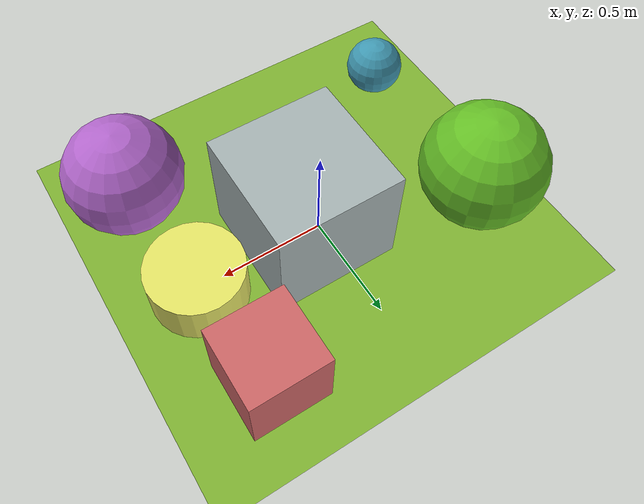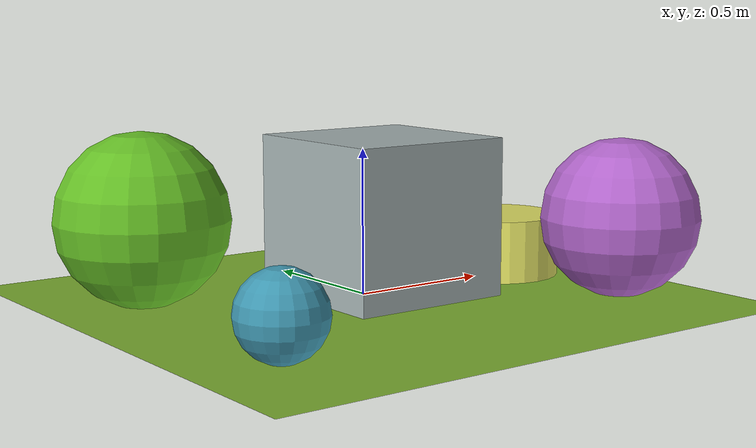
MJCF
<mujoco>
   <asset>
<texture type="skybox" builtin="gradient" rgb1="0.3 0.7 0.3" rgb2="0.6 0.9 0.6" width="256" height="256"/>
<texture name="checker_0" builtin="checker" rgb1="0.8 0.0 0.2" rgb2="0.8 0.8 0.6" width="200" height="200"/>
<texture name="gradient_1" builtin="gradient" rgb1="0.5 0.6 0.9" rgb2="0.8 0.8 0.5" width="200" height="200"/>
<texture name="flat_2" builtin="flat" rgb1="0.7 0.4 0.8" rgb2="0.7 0.4 0.8"  width="200" height="200"/>
<texture name="checker_3" builtin="checker" rgb1="0.4 0.6 0.2" rgb2="0.4 0.9 0.1" width="200" height="200"/>
<texture name="flat_4" builtin="flat" rgb1="0.9 0.9 0.4" rgb2="0.9 0.9 0.4"  width="200" height="200"/>
<texture name="checker_5" builtin="checker" rgb1="0.3 0.7 0.7" rgb2="0.2 0.5 0.7" width="200" height="200"/><material name="checker_0_mat" reflectance="0" texrepeat="7 7" texture="checker_0" texuniform="false" />
<material name="gradient_1_mat" reflectance="0" texture="gradient_1" texuniform="true"/>
<material name="flat_2_mat" reflectance="0" texture="flat_2" texuniform="true"/>
<material name="checker_3_mat" reflectance="0" texrepeat="10 10" texture="checker_3" texuniform="false" />
<material name="flat_4_mat" reflectance="0" texture="flat_4" texuniform="true"/>
<material name="checker_5_mat" reflectance="0" texrepeat="2 2" texture="checker_5" texuniform="false" />
   </asset>

   <worldbody>
      <light diffuse=".9 .9 .9" pos="0 0 3" dir="0 0 -1"/>
     <geom type="plane" size="1 1 0.1" rgba="0.5 0.7 0.2 1"/>
<geom type="box" pos="0.56 0.52 0.18" size="0.18 0.18 0.18" material="checker_0_mat" />
<geom type="box" pos="0.07 -0.01 0.27" size="0.29 0.29 0.27" material="gradient_1_mat" />
<geom type="sphere" pos="0.68 -0.54 0.27" size="0.27 0.27 0.27" material="flat_2_mat" />
<geom type="sphere" pos="-0.69 0.27 0.29" size="0.29 0.29 0.29" material="checker_3_mat" />
<geom type="cylinder" pos="0.62 0.01 0.11" size="0.22 0.11 0.11" material="flat_4_mat" />
<geom type="sphere" pos="-0.72 -0.6 0.14" size="0.14 0.14 0.14" material="checker_5_mat" /><camera euler="60 0 180" fovy="60" name="camera1" pos="0 -1.5 1"></camera>   </worldbody>
</mujoco>
